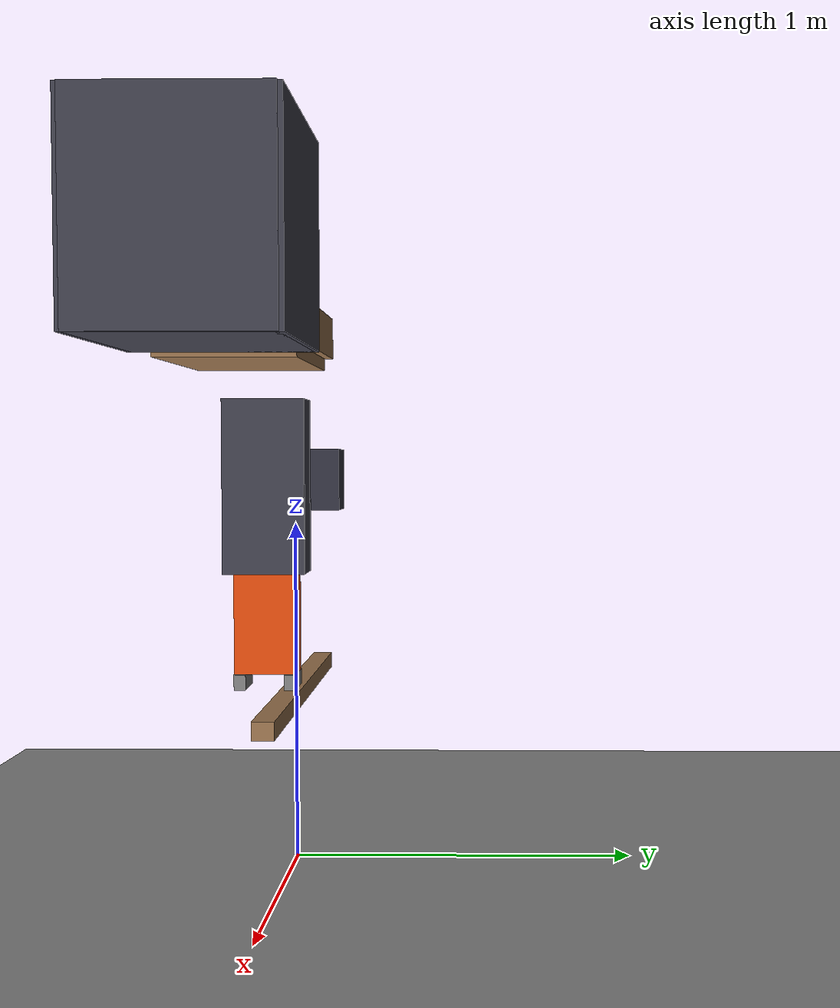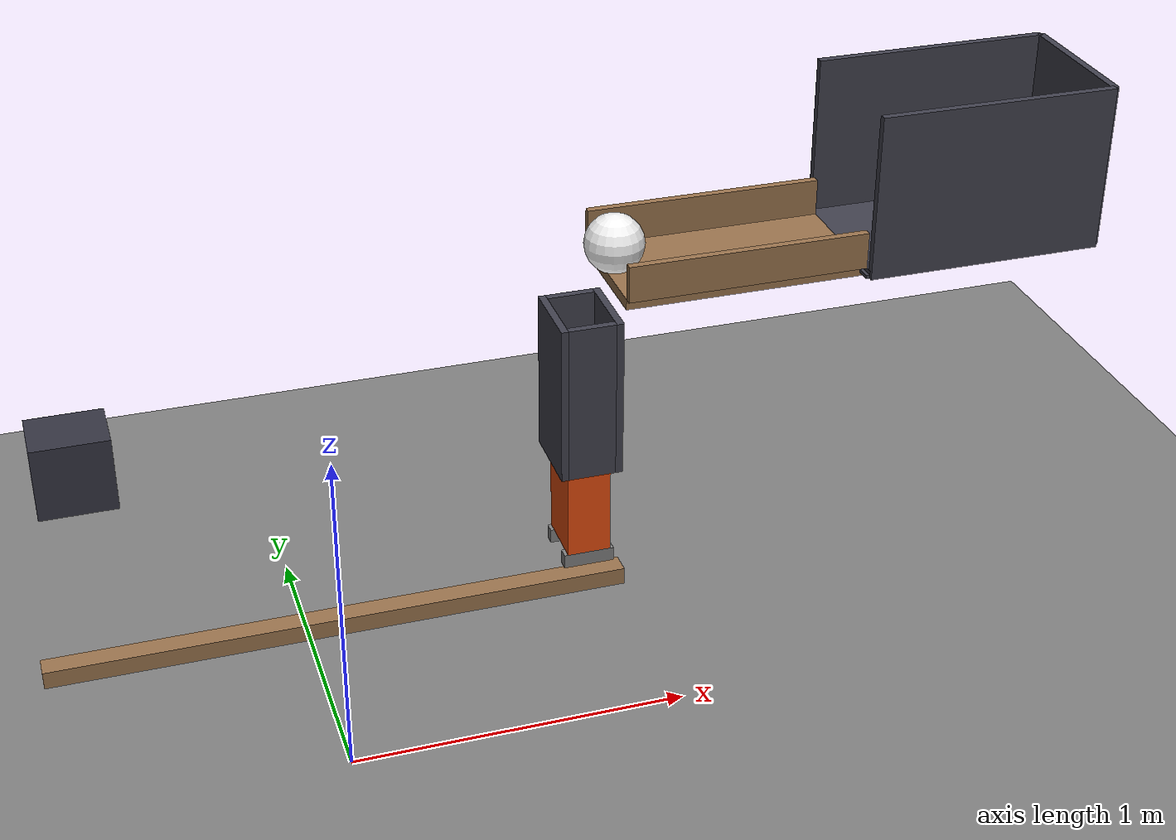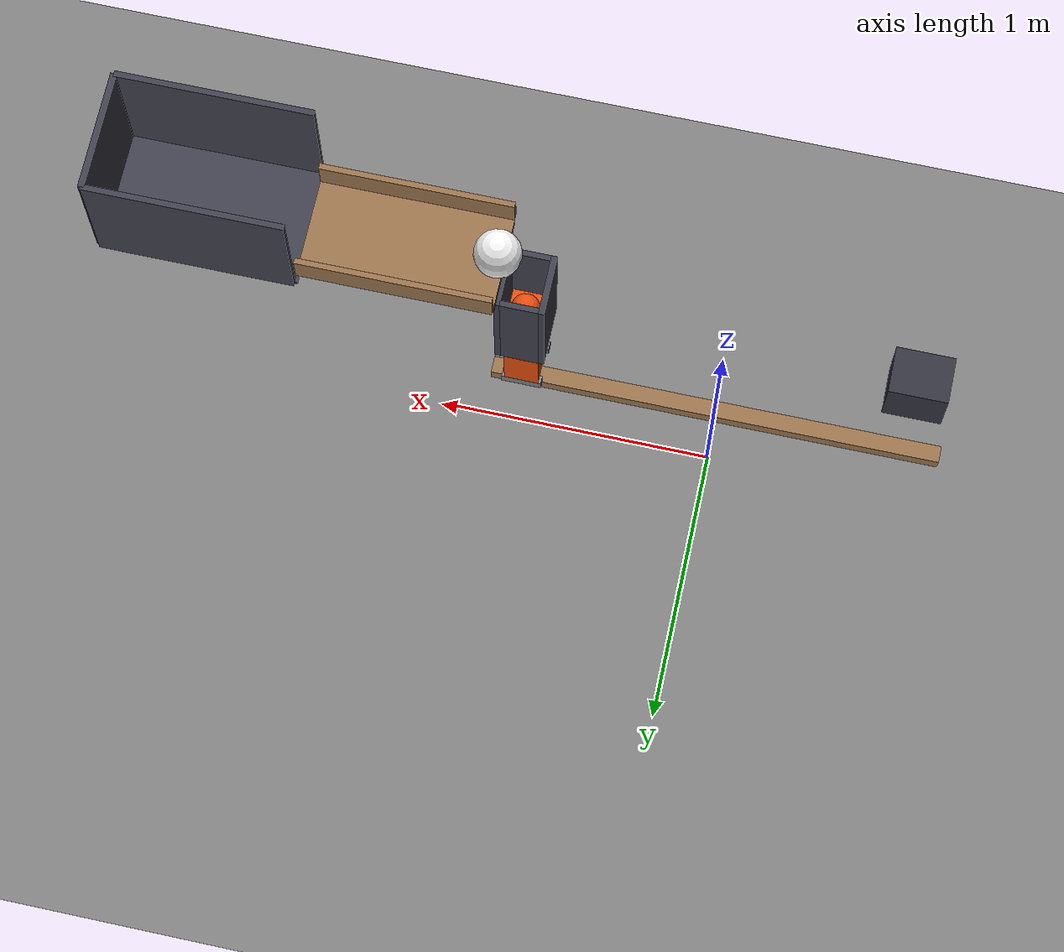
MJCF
<mujoco model="falling_weight_and_two-gap_lift">
  <compiler angle="radian"/>
  <option timestep="0.002"/>
  <worldbody>
    <geom name="floor" type="plane" size="6 6 0.1" friction="0.8 0.005 0.002"/>
    <body name="lever" pos="0 0 0.5">
      <joint name="lever_hinge" type="hinge" pos="0 0 0" axis="0 1 0" limited="true" range="-0.436332 0" damping="0.03"/>
      <geom name="lever" type="box" pos="0 0 0" size="0.8 0.03 0.025" mass="0.6" friction="0.5 0.005 0.0001" solref="0.01 1" rgba="0.6 0.45 0.3 1"/>
    </body>
    <body name="weight" pos="-0.65 0 1.125">
      <freejoint/>
      <geom name="weight" type="box" pos="0 0 0" size="0.1 0.08 0.1" mass="6" friction="0.6 0.005 0.0001" solref="0.01 1" rgba="0.2 0.2 0.25 1"/>
    </body>
    <body name="left seat">
      <geom name="left seat" type="box" pos="0.68 0.065 0.62" size="0.07 0.015 0.02" friction="0.01 0.005 0.0001" solref="0.01 1"/>
    </body>
    <body name="right seat">
      <geom name="right seat" type="box" pos="0.68 -0.065 0.62" size="0.07 0.015 0.02" friction="0.01 0.005 0.0001" solref="0.01 1"/>
    </body>
    <body name="rear guide">
      <geom name="rear guide" type="box" pos="0.605 0 1.125" size="0.01 0.105 0.225" friction="0.01 0.005 0.0001" solref="0.01 1" rgba="0.25 0.25 0.3 1"/>
    </body>
    <body name="front guide">
      <geom name="front guide" type="box" pos="0.755 0 1.125" size="0.01 0.105 0.225" friction="0.01 0.005 0.0001" solref="0.01 1" rgba="0.25 0.25 0.3 1"/>
    </body>
    <body name="left guide">
      <geom name="left guide" type="box" pos="0.68 0.095 1.125" size="0.065 0.01 0.225" friction="0.01 0.005 0.0001" solref="0.01 1" rgba="0.25 0.25 0.3 1"/>
    </body>
    <body name="right guide">
      <geom name="right guide" type="box" pos="0.68 -0.095 1.125" size="0.065 0.01 0.225" friction="0.01 0.005 0.0001" solref="0.01 1" rgba="0.25 0.25 0.3 1"/>
    </body>
    <body name="lift" pos="0.68 0 1.11">
      <freejoint/>
      <geom name="lift" type="sphere" pos="0 0 0" size="0.05" mass="0.03" friction="0.01 0.005 0.0001" solref="0.01 1" rgba="0.9 0.3 0.05 1"/>
      <geom name="lift stem" type="box" pos="0 0 -0.26" size="0.06 0.08 0.21" mass="0.3" friction="0.01 0.005 0.0001" solref="0.01 1" rgba="0.9 0.3 0.05 1"/>
    </body>
    <body name="bridge">
      <geom name="bridge" type="box" pos="1.075 0 1.435" size="0.325 0.16 0.015" friction="0.04 0.001 0.0004" solref="0.01 1" rgba="0.6 0.45 0.3 1"/>
    </body>
    <body name="bridge left rail">
      <geom name="bridge left rail" type="box" pos="1.075 0.17 1.5" size="0.325 0.01 0.05" friction="0.04 0.005 0.0001" solref="0.01 1" rgba="0.6 0.45 0.3 1"/>
    </body>
    <body name="bridge right rail">
      <geom name="bridge right rail" type="box" pos="1.075 -0.17 1.5" size="0.325 0.01 0.05" friction="0.04 0.005 0.0001" solref="0.01 1" rgba="0.6 0.45 0.3 1"/>
    </body>
    <body name="ball" pos="0.77 0 1.53">
      <freejoint/>
      <geom name="ball" type="sphere" pos="0 0 0" size="0.08" mass="0.06" condim="6" friction="0.04 0.001 0.0004" solref="0.01 1" rgba="0.95 0.95 0.95 1"/>
    </body>
    <body name="cup">
      <geom name="cup_base" type="box" pos="1.725 0 1.44" size="0.325 0.2 0.01" friction="1 0.01 0.02" solref="0.01 1" rgba="0.25 0.25 0.3 1"/>
      <geom name="cup_near_wall" type="box" pos="1.4 0 1.435" size="0.01 0.2 0.005" friction="1 0.01 0.02" solref="0.01 1" rgba="0.25 0.25 0.3 1"/>
      <geom name="cup_far_wall" type="box" pos="2.05 0 1.655" size="0.01 0.2 0.225" friction="1 0.01 0.02" solref="0.01 1" rgba="0.25 0.25 0.3 1"/>
      <geom name="cup_left_wall" type="box" pos="1.725 0.2 1.655" size="0.325 0.01 0.225" friction="1 0.01 0.02" solref="0.01 1" rgba="0.25 0.25 0.3 1"/>
      <geom name="cup_right_wall" type="box" pos="1.725 -0.2 1.655" size="0.325 0.01 0.225" friction="1 0.01 0.02" solref="0.01 1" rgba="0.25 0.25 0.3 1"/>
    </body>
  </worldbody>
  <keyframe>
    <key name="start" qpos="0 -0.65 0 1.125 1 0 0 0 0.68 0 1.11 1 0 0 0 0.77 0 1.53 1 0 0 0" qvel="0 0 0 0 0 0 0 0 0 0 0 0 0 0 0 0 0 0 0"/>
  </keyframe>
</mujoco>
